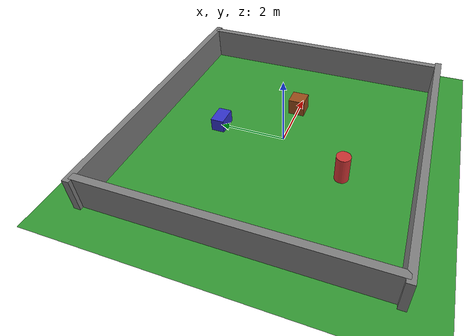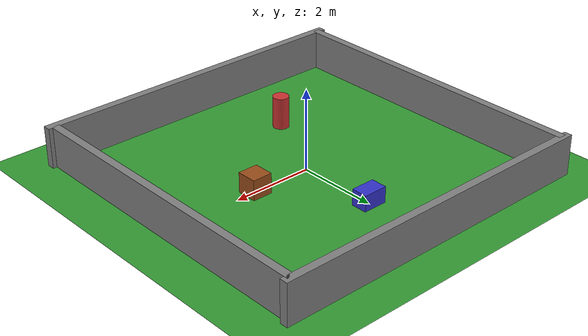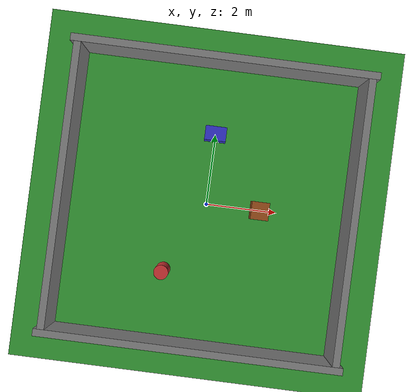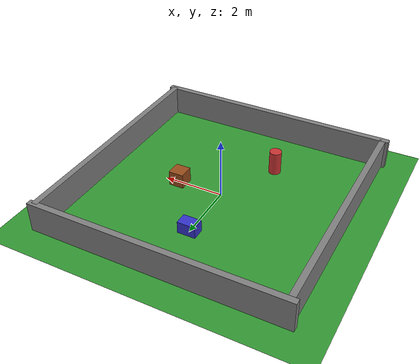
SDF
<?xml version="1.0" ?>
<sdf version="1.8">
  <world name="dynamic_obstacles_world">

    <!-- 必須プラグイン -->
    <plugin filename="gz-sim-physics-system"
            name="gz::sim::systems::Physics">
    </plugin>
    <plugin filename="gz-sim-user-commands-system"
            name="gz::sim::systems::UserCommands">
    </plugin>
    <plugin filename="gz-sim-scene-broadcaster-system"
            name="gz::sim::systems::SceneBroadcaster">
    </plugin>
    <plugin filename="gz-sim-sensors-system"
            name="gz::sim::systems::Sensors">
      <render_engine>ogre2</render_engine>
    </plugin>

    <!-- 太陽光 -->
    <light type="directional" name="sun">
      <cast_shadows>true</cast_shadows>
      <pose>0 0 10 0 0 0</pose>
      <diffuse>0.8 0.8 0.8 1</diffuse>
      <specular>0.2 0.2 0.2 1</specular>
      <attenuation>
        <range>1000</range>
        <constant>0.9</constant>
        <linear>0.01</linear>
        <quadratic>0.001</quadratic>
      </attenuation>
      <direction>-0.5 0.1 -0.9</direction>
    </light>

    <!-- 地面 -->
    <model name="ground_plane">
      <static>true</static>
      <link name="link">
        <collision name="collision">
          <geometry>
            <plane>
              <normal>0 0 1</normal>
              <size>100 100</size>
            </plane>
          </geometry>
        </collision>
        <visual name="visual">
          <geometry>
            <plane>
              <normal>0 0 1</normal>
              <size>100 100</size>
            </plane>
          </geometry>
          <material>
            <ambient>0.2 0.6 0.2 1</ambient>
            <diffuse>0.2 0.6 0.2 1</diffuse>
            <specular>0.1 0.1 0.1 1</specular>
          </material>
        </visual>
      </link>
    </model>

    <!-- 外壁 (8m x 8m) -->
    <model name="wall_north">
      <pose>0 4 0.5 0 0 0</pose>
      <static>true</static>
      <link name="link">
        <collision name="collision">
          <geometry><box><size>8.4 0.2 1.0</size></box></geometry>
        </collision>
        <visual name="visual">
          <geometry><box><size>8.4 0.2 1.0</size></box></geometry>
          <material>
            <ambient>0.5 0.5 0.5 1</ambient>
            <diffuse>0.5 0.5 0.5 1</diffuse>
          </material>
        </visual>
      </link>
    </model>

    <model name="wall_south">
      <pose>0 -4 0.5 0 0 0</pose>
      <static>true</static>
      <link name="link">
        <collision name="collision">
          <geometry><box><size>8.4 0.2 1.0</size></box></geometry>
        </collision>
        <visual name="visual">
          <geometry><box><size>8.4 0.2 1.0</size></box></geometry>
          <material>
            <ambient>0.5 0.5 0.5 1</ambient>
            <diffuse>0.5 0.5 0.5 1</diffuse>
          </material>
        </visual>
      </link>
    </model>

    <model name="wall_east">
      <pose>4 0 0.5 0 0 0</pose>
      <static>true</static>
      <link name="link">
        <collision name="collision">
          <geometry><box><size>0.2 8.0 1.0</size></box></geometry>
        </collision>
        <visual name="visual">
          <geometry><box><size>0.2 8.0 1.0</size></box></geometry>
          <material>
            <ambient>0.5 0.5 0.5 1</ambient>
            <diffuse>0.5 0.5 0.5 1</diffuse>
          </material>
        </visual>
      </link>
    </model>

    <model name="wall_west">
      <pose>-4 0 0.5 0 0 0</pose>
      <static>true</static>
      <link name="link">
        <collision name="collision">
          <geometry><box><size>0.2 8.0 1.0</size></box></geometry>
        </collision>
        <visual name="visual">
          <geometry><box><size>0.2 8.0 1.0</size></box></geometry>
          <material>
            <ambient>0.5 0.5 0.5 1</ambient>
            <diffuse>0.5 0.5 0.5 1</diffuse>
          </material>
        </visual>
      </link>
    </model>

    <!-- 静的障害物: 中央付近の箱                                    -->
    <model name="static_box">
      <pose>1.5 0 0.25 0 0 0</pose>
      <static>true</static>
      <link name="link">
        <collision name="collision">
          <geometry><box><size>0.5 0.5 0.5</size></box></geometry>
        </collision>
        <visual name="visual">
          <geometry><box><size>0.5 0.5 0.5</size></box></geometry>
          <material>
            <ambient>0.6 0.3 0.1 1</ambient>
            <diffuse>0.6 0.3 0.1 1</diffuse>
          </material>
        </visual>
      </link>
    </model>

    <!-- 動的障害物 1: 円柱 (歩行者モデル)                          -->
    <!-- gz topic コマンドで移動可能:                                -->
    <!--   gz topic -t /model/moving_pedestrian/cmd_vel              -->
    <!--     -m gz.msgs.Twist -p 'linear: {y: 0.5}'                 -->
    <model name="moving_pedestrian">
      <pose>-1.0 -2.0 0.4 0 0 0</pose>
      <link name="body">
        <inertial>
          <mass>10.0</mass>
          <inertia>
            <ixx>0.5</ixx><iyy>0.5</iyy><izz>0.25</izz>
          </inertia>
        </inertial>
        <collision name="collision">
          <geometry>
            <cylinder>
              <radius>0.2</radius>
              <length>0.8</length>
            </cylinder>
          </geometry>
        </collision>
        <visual name="visual">
          <geometry>
            <cylinder>
              <radius>0.2</radius>
              <length>0.8</length>
            </cylinder>
          </geometry>
          <material>
            <ambient>0.8 0.2 0.2 1</ambient>
            <diffuse>0.8 0.2 0.2 1</diffuse>
          </material>
        </visual>
      </link>
      <!-- VelocityControl: cmd_vel トピックで移動制御可能にする -->
      <plugin filename="gz-sim-velocity-control-system"
              name="gz::sim::systems::VelocityControl">
      </plugin>
    </model>

    <!-- 動的障害物 2: 箱 (カートモデル)                            -->
    <!-- gz topic コマンドで移動可能:                                -->
    <!--   gz topic -t /model/moving_cart/cmd_vel                    -->
    <!--     -m gz.msgs.Twist -p 'linear: {x: 0.3}'                 -->
    <model name="moving_cart">
      <pose>0.0 2.0 0.2 0 0 0</pose>
      <link name="body">
        <inertial>
          <mass>15.0</mass>
          <inertia>
            <ixx>0.8</ixx><iyy>0.8</iyy><izz>0.5</izz>
          </inertia>
        </inertial>
        <collision name="collision">
          <geometry>
            <box><size>0.6 0.4 0.4</size></box>
          </geometry>
        </collision>
        <visual name="visual">
          <geometry>
            <box><size>0.6 0.4 0.4</size></box>
          </geometry>
          <material>
            <ambient>0.2 0.2 0.8 1</ambient>
            <diffuse>0.2 0.2 0.8 1</diffuse>
          </material>
        </visual>
      </link>
      <!-- VelocityControl: cmd_vel トピックで移動制御可能にする -->
      <plugin filename="gz-sim-velocity-control-system"
              name="gz::sim::systems::VelocityControl">
      </plugin>
    </model>

  </world>
</sdf>
